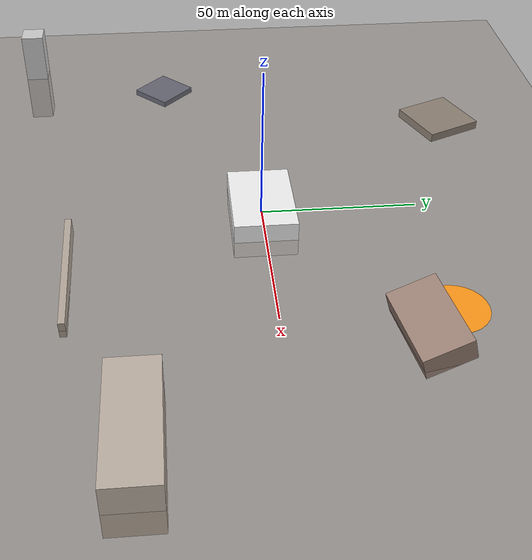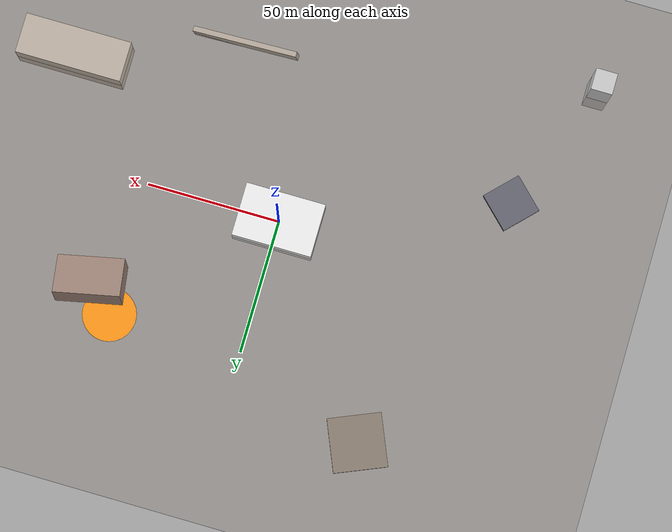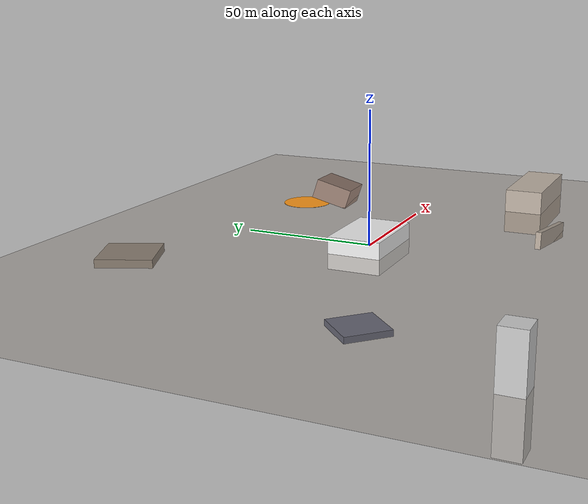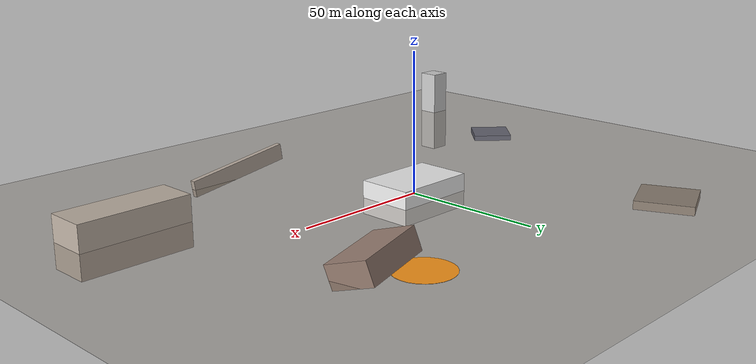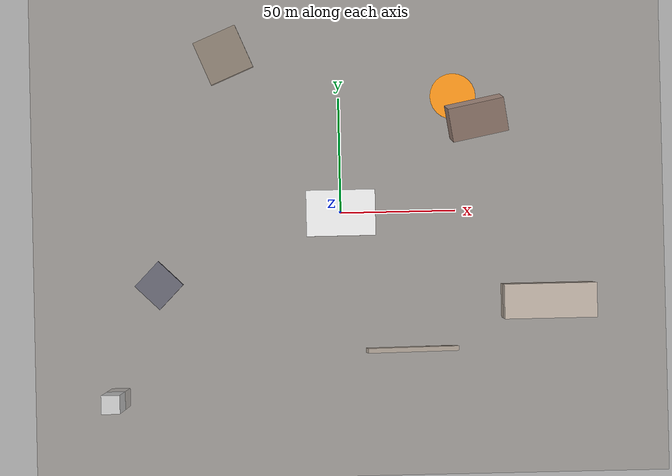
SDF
<?xml version="1.0" ?>
<sdf version="1.6">
  <world name="earthquake_disaster">

    <!-- Physics -->
    <physics type="ode">
      <max_step_size>0.004</max_step_size>
      <real_time_factor>1</real_time_factor>
      <real_time_update_rate>250</real_time_update_rate>
    </physics>

    <!-- Sun -->
    <light type="directional" name="sun">
      <cast_shadows>false</cast_shadows>
      <pose>0 0 100 0 0 0</pose>
      <diffuse>0.8 0.8 0.8 1</diffuse>
      <specular>0.2 0.2 0.2 1</specular>
      <attenuation>
        <range>1000</range>
        <constant>0.9</constant>
        <linear>0.01</linear>
        <quadratic>0.001</quadratic>
      </attenuation>
      <direction>-0.5 0.1 -0.9</direction>
    </light>

    <!-- Ground plane -->
    <model name="ground_plane">
      <static>true</static>
      <link name="link">
        <collision name="collision">
          <geometry>
            <plane>
              <normal>0 0 1</normal>
              <size>500 500</size>
            </plane>
          </geometry>
        </collision>
        <visual name="visual">
          <geometry>
            <plane>
              <normal>0 0 1</normal>
              <size>500 500</size>
            </plane>
          </geometry>
          <material>
            <ambient>0.4 0.35 0.3 1</ambient>
            <diffuse>0.5 0.45 0.4 1</diffuse>
          </material>
        </visual>
      </link>
    </model>

    <!-- ══════ Intact Buildings ══════ -->

    <!-- Hospital (priority zone) -->
    <model name="hospital">
      <static>true</static>
      <pose>0 0 0 0 0 0</pose>
      <link name="link">
        <collision name="collision">
          <geometry><box><size>30 20 12</size></box></geometry>
        </collision>
        <visual name="visual">
          <geometry><box><size>30 20 12</size></box></geometry>
          <material>
            <ambient>0.9 0.9 0.9 1</ambient>
            <diffuse>0.95 0.95 0.95 1</diffuse>
          </material>
        </visual>
      </link>
    </model>

    <!-- Rescue staging area marker -->
    <model name="rescue_staging">
      <static>true</static>
      <pose>50 50 0 0 0 0</pose>
      <link name="link">
        <visual name="visual">
          <geometry><cylinder><radius>10</radius><length>0.1</length></cylinder></geometry>
          <material>
            <ambient>1.0 0.5 0.0 1</ambient>
            <diffuse>1.0 0.6 0.1 1</diffuse>
          </material>
        </visual>
      </link>
    </model>

    <!-- ══════ Collapsed / Damaged Structures ══════ -->

    <!-- Collapsed building (tilted) -->
    <model name="collapsed_building_1">
      <static>true</static>
      <pose>60 40 4 0.3 0.1 0.2</pose>
      <link name="link">
        <collision name="collision">
          <geometry><box><size>25 15 8</size></box></geometry>
        </collision>
        <visual name="visual">
          <geometry><box><size>25 15 8</size></box></geometry>
          <material>
            <ambient>0.5 0.4 0.35 1</ambient>
            <diffuse>0.6 0.5 0.45 1</diffuse>
          </material>
        </visual>
      </link>
    </model>

    <!-- Rubble pile -->
    <model name="rubble_1">
      <static>true</static>
      <pose>-50 70 1.5 0 0 0.4</pose>
      <link name="link">
        <collision name="collision">
          <geometry><box><size>20 20 3</size></box></geometry>
        </collision>
        <visual name="visual">
          <geometry><box><size>20 20 3</size></box></geometry>
          <material>
            <ambient>0.45 0.4 0.35 1</ambient>
            <diffuse>0.55 0.5 0.45 1</diffuse>
          </material>
        </visual>
      </link>
    </model>

    <!-- Partially collapsed wall -->
    <model name="damaged_wall_1">
      <static>true</static>
      <pose>30 -60 3 0 0.15 0</pose>
      <link name="link">
        <collision name="collision">
          <geometry><box><size>40 2 6</size></box></geometry>
        </collision>
        <visual name="visual">
          <geometry><box><size>40 2 6</size></box></geometry>
          <material>
            <ambient>0.6 0.55 0.5 1</ambient>
            <diffuse>0.7 0.65 0.6 1</diffuse>
          </material>
        </visual>
      </link>
    </model>

    <!-- Metal debris (causes signal interference) -->
    <model name="metal_debris">
      <static>true</static>
      <pose>-80 -30 1 0 0 0.8</pose>
      <link name="link">
        <collision name="collision">
          <geometry><box><size>15 15 2</size></box></geometry>
        </collision>
        <visual name="visual">
          <geometry><box><size>15 15 2</size></box></geometry>
          <material>
            <ambient>0.3 0.3 0.35 1</ambient>
            <diffuse>0.4 0.4 0.45 1</diffuse>
          </material>
        </visual>
      </link>
    </model>

    <!-- ══════ Tall structures (affect coverage) ══════ -->

    <model name="tower_intact">
      <static>true</static>
      <pose>-100 -80 0 0 0 0</pose>
      <link name="link">
        <collision name="collision">
          <geometry><box><size>8 8 35</size></box></geometry>
        </collision>
        <visual name="visual">
          <geometry><box><size>8 8 35</size></box></geometry>
          <material>
            <ambient>0.7 0.7 0.7 1</ambient>
            <diffuse>0.8 0.8 0.8 1</diffuse>
          </material>
        </visual>
      </link>
    </model>

    <model name="apartment_block">
      <static>true</static>
      <pose>90 -40 0 0 0 0</pose>
      <link name="link">
        <collision name="collision">
          <geometry><box><size>40 15 18</size></box></geometry>
        </collision>
        <visual name="visual">
          <geometry><box><size>40 15 18</size></box></geometry>
          <material>
            <ambient>0.65 0.6 0.55 1</ambient>
            <diffuse>0.75 0.7 0.65 1</diffuse>
          </material>
        </visual>
      </link>
    </model>

  </world>
</sdf>
